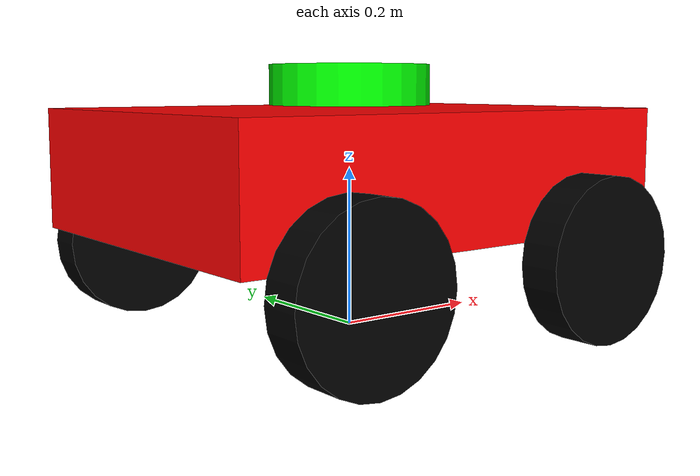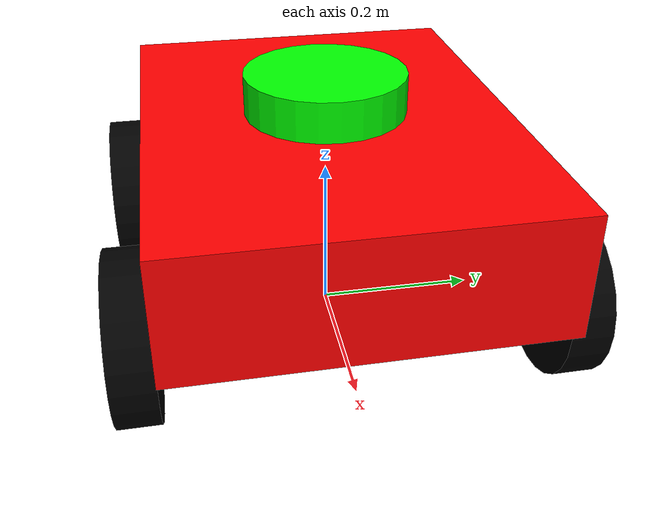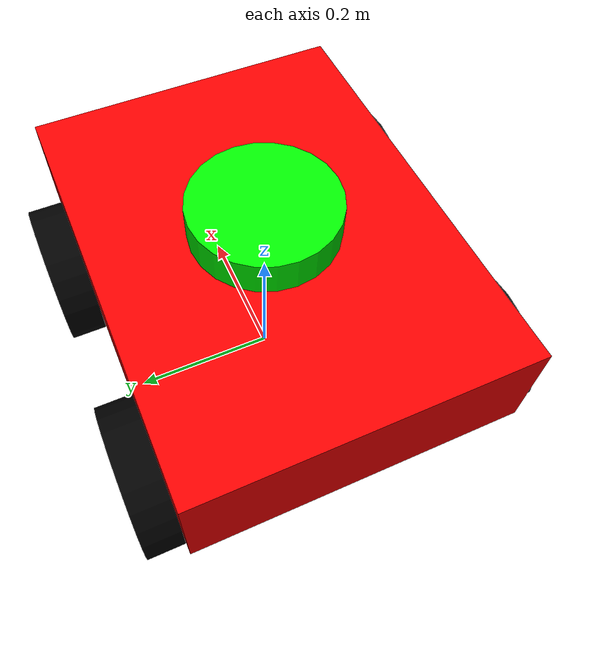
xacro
<?xml version="1.0"?>
<robot name="myrobot" xmlns:xacro="http://www.ros.org/wiki/xacro" >

    <xacro:include filename="$(find urdf_testing)/urdf/rob.xacro"/>
    <gazebo>
        <plugin name="skid_steer_frive_controller" filename="libgazebo_ros_skid_steer_drive.so">
            <updateRate>100.0</updateRate>
            <leftFrontJoint>joint_front_left_wheel</leftFrontJoint>
            <rightFrontJoint>joint_front_right_wheel</rightFrontJoint>
            <leftRearJoint>joint_back_left_wheel</leftRearJoint>
            <rightRearJoint>joint_back_right_wheel</rightRearJoint>
            <wheelSeparation>0.5</wheelSeparation>
            <wheelDiameter>0.2</wheelDiameter>
            <robotBaseFrame>robot_footprint</robotBaseFrame>
            <torque>20</torque>

            <topicName>cmd_vel</topicName>
            <odometryTopic>odom</odometryTopic>
            <odometryFrame>odom</odometryFrame>

            <broadcastTF>true</broadcastTF>

            <commandTopic>cmd_vel</commandTopic>
            <covariance_x>0.0001</covariance_x>
            <covariance_y>0.0001</covariance_y>
            <covariance_yaw>0.01</covariance_yaw>
        </plugin>
    </gazebo>

    <!-- Lidar -->
    <gazebo reference="sensor">
        <sensor type="ray" name="head_hokuyo_sensor">
        <pose>0 0 0 0 0 0</pose>
        <visualize>true</visualize>
        <update_rate>40</update_rate>
        <ray>
            <scan>
            <horizontal>
                <samples>720</samples>
                <resolution>1</resolution>
                <min_angle>-3.14159264</min_angle>
                <max_angle>3.14159264</max_angle>
            </horizontal>
            </scan>
            <range>
            <min>0.4</min>
            <max>30.0</max>
            <resolution>0.01</resolution>
            </range>
            <noise>
            <type>gaussian</type>
            <mean>0.0</mean>
            <stddev>0.01</stddev>
            </noise>
        </ray>
        <plugin name="gazebo_ros_head_hokuyo_controller" filename="libgazebo_ros_laser.so">
            <topicName>/scan</topicName>
            <frameName>sensor</frameName>
            <robotNamespace>/myrobot</robotNamespace>
        </plugin>
        </sensor>
    </gazebo>
</robot>

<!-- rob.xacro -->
<!-- Xacro file description-->
<robot name="myrobot" xmlns:xacro="http://www.ros.org/wiki/xacro" >

    <!-- dummy link-->
    <link name="robot_footprint"/>

    <!-- chassis link-->
    <link name="chassis">
        <inertial>
            <origin xyz="0.0 0.0 0.0" />
            <mass value="20"/>
            <inertia ixx="0.1" ixy="0.0" ixz="0.0" iyy="0.1" iyz="0.0" izz="0.1"/>
        </inertial>
        <visual>
            <origin xyz="0.0 0.0 0.2" />
            <geometry>
                <box size="0.6 0.45 0.15"/>
            </geometry>
            <material name="Red">
                <color rgba="1.0 0.0 0.0 1.0"/>
            </material>
        </visual>
        <collision>
            <origin xyz="0.0 0.0 0.2" />
            <geometry>
                <box size="0.6 0.45 0.15"/>
            </geometry>
            <material name="Red">
                <color rgba="1.0 0.0 0.0 1.0"/>
            </material>
        </collision>

    </link>
    <joint name="joint_chassis" type="fixed">
        <parent link="robot_footprint"/>
        <child link="chassis"/>
    </joint>

    <!-- Front left wheel link-->
    <link name="front_left_wheel">
        <inertial>
            <origin xyz="0.0 0.0 0.0" rpy="0.0 0.0 0.0"/>
            <mass value="0.7"/>
            <inertia ixx="0.1" ixy="0.0" ixz="0.0" iyy="0.1" iyz="0.0" izz="0.1"/>
        </inertial>
        <visual name="front_left_wheel_visual">
            <origin xyz="0.0 0.0 0.0" rpy="0 1.5707 1.5707"/>
            <geometry>
                <cylinder radius="0.1" length="0.05"/>
             </geometry>
             <material name="Black">
                <color rgba="0.0 0.0 0.0 1.0"/>
            </material>
        </visual>
        <collision name="front_left_wheel_collision">
            <origin xyz="0.0 0.0 0.0" rpy="0 1.5707 1.5707"/>
            <geometry>
                <cylinder radius="0.1" length="0.05"/>
            </geometry>
            <material name="Black">
                <color rgba="0.0 0.0 0.0 1.0"/>
            </material>
        </collision>
    </link>
    <joint name="joint_front_left_wheel" type="continuous">
        <origin xyz="0.175 0.25 0.1" rpy="0.0 0.0 0.0"/>
        <parent link="chassis"/>
        <child link="front_left_wheel"/>
        <axis xyz="0 1 0" rpy="0 0 0"/>
        <limit effort="10000" velocity="1000" />
	    <dynamics damping="1.0" friction="1.0" />
    </joint>

    <!-- back left wheel link-->
    <link name="back_left_wheel">
        <inertial>
            <origin xyz="0.0 0.0 0.0" rpy="0.0 0.0 0.0"/>
            <mass value="0.7"/>
            <inertia ixx="0.1" ixy="0.0" ixz="0.0" iyy="0.1" iyz="0.0" izz="0.1"/>
        </inertial>
        <visual name="back_left_wheel_visual">
            <origin xyz="0.0 0.0 0.0" rpy="0 1.5707 1.5707"/>
            <geometry>
                <cylinder radius="0.1" length="0.05"/>
            </geometry>
            <material name="Black">
                <color rgba="0.0 0.0 0.0 1.0"/>
            </material>
        </visual>
        <collision name="back_left_wheel_collision">
            <origin xyz="0.0 0.0 0.0" rpy="0 1.5707 1.5707"/>
            <geometry>
                <cylinder radius="0.1" length="0.05"/>
            </geometry>
            <material name="Black">
                <color rgba="0.0 0.0 0.0 1.0"/>
            </material>
        </collision>
    </link>
    <joint name="joint_back_left_wheel" type="continuous">
        <origin xyz="-0.175 0.25 0.1" rpy="0.0 0.0 0.0"/>
        <parent link="chassis"/>
        <child link="back_left_wheel"/>
        <axis xyz="0 1 0" rpy="0 0 0"/>
        <limit effort="10000" velocity="1000" />
	    <dynamics damping="1.0" friction="1.0" />
    </joint>

    <!-- front right wheel link-->
    <link name="front_right_wheel">
        <inertial>
            <origin xyz="0.0 0.0 0.0" rpy="0.0 0.0 0.0"/>
            <mass value="0.7"/>
            <inertia ixx="0.1" ixy="0.0" ixz="0.0" iyy="0.1" iyz="0.0" izz="0.1"/>
        </inertial>
        <visual name="front_right_wheel_visual">
            <origin xyz="0.0 0.0 0.0" rpy="0 1.5707 1.5707"/>
            <geometry>
                <cylinder radius="0.1" length="0.05"/>
            </geometry>
            <material name="Black">
                <color rgba="0.0 0.0 0.0 1.0"/>
            </material>
        </visual>
        <collision name="front_right_wheel_collision">
            <origin xyz="0.0 0.0 0.0" rpy="0 1.5707 1.5707"/>
            <geometry>
                <cylinder radius="0.1" length="0.05"/>
            </geometry>
            <material name="Black">
                <color rgba="0.0 0.0 0.0 1.0"/>
            </material>
        </collision>
    </link>
    <joint name="joint_front_right_wheel" type="continuous">
        <origin xyz="0.175 -0.25 0.1" rpy="0.0 0.0 0.0"/>
        <parent link="chassis"/>
        <child link="front_right_wheel"/>
        <axis xyz="0 1 0" rpy="0 0 0"/>
        <limit effort="10000" velocity="1000" />
	    <dynamics damping="1.0" friction="1.0" />
    </joint>
    <!-- back right wheel link-->
    <link name="back_right_wheel">
        <inertial>
            <origin xyz="0.0 0.0 0.0" rpy="0.0 0.0 0.0"/>
            <mass value="0.7"/>
            <inertia ixx="0.1" ixy="0.0" ixz="0.0" iyy="0.1" iyz="0.0" izz="0.1"/>
        </inertial>
        <visual name="back_right_wheel_visual">
            <origin xyz="0.0 0.0 0.0" rpy="0 1.5707 1.5707"/>
            <geometry>
                <cylinder radius="0.1" length="0.05"/>
            </geometry>
            <material name="Black">
                <color rgba="0.0 0.0 0.0 1.0"/>
            </material>
        </visual>
        <collision name="back_right_wheel_collision">
            <origin xyz="0.0 0.0 0.0" rpy="0 1.5707 1.5707"/>
            <geometry>
                <cylinder radius="0.1" length="0.05"/>
            </geometry>
            <material name="Black">
                <color rgba="0.0 0.0 0.0 1.0"/>
            </material>
        </collision>
    </link>
    <joint name="joint_back_right_wheel" type="continuous">
        <origin xyz="-0.175 -0.25 0.1" rpy="0.0 0.0 0.0"/>
        <parent link="chassis"/>
        <child link="back_right_wheel"/>
        <axis xyz="0 1 0" rpy="0 0 0"/>
        <limit effort="10000" velocity="1000" />
	    <dynamics damping="1.0" friction="1.0" />
    </joint>

    <!-- lidar link-->

    <link name="sensor">
        <inertial>
            <origin xyz="0 0 0" rpy="0 0 0"/>
            <mass value="0.9"/>
            <inertia ixx="1.0" ixy="0.0" ixz="0.0" iyy="1.0" iyz="0.0" izz="1.0"/>
        </inertial>
        <visual>
            <origin xyz="0 0 0" rpy="0 0 0"/>
            <geometry>
                <cylinder radius="0.1" length="0.05"/>
            </geometry>
            <material name="Green">
                <color rgba="0.0 1.0 0.0 1.0"/>
            </material>
        </visual>
        <collision>
            <origin xyz="0 0 0" rpy="0 0 0"/>
            <geometry>
                <cylinder radius="0.1" length="0.05"/>
            </geometry>
            <material name="Green">
                <color rgba="0.0 1.0 0.0 1.0"/>
            </material>
        </collision>
    </link>
    <joint name="sensor_joint" type="fixed">
        <origin xyz="0.0 0.0 0.304" rpy="0 0 0"/>
        <parent link="chassis"/>
        <child link="sensor"/>
        <axis xyz="0 0 0"/>
    </joint>

    <!-- Color of bot -->

    <gazebo reference="chassis">
		<material>Gazebo/Red</material>
	</gazebo>

    <gazebo reference="sensor">
        <material>Gazebo/Green</material>
    </gazebo>

    <gazebo reference="front_left_wheel">
		<material>Gazebo/Black</material>
		<kp>1000000.0</kp> <!-- kp and kd for rubber -->
		<kd>100.0</kd>
		<mu1>1.0</mu1>
		<mu2>1.0</mu2>
		<maxVel>1.0</maxVel>
		<minDepth>0.00</minDepth>
	</gazebo>

    <gazebo reference="back_left_wheel">
		<material>Gazebo/Black</material>
		<kp>1000000.0</kp> <!-- kp and kd for rubber -->
		<kd>100.0</kd>
		<mu1>1.0</mu1>
		<mu2>1.0</mu2>
		<maxVel>1.0</maxVel>
		<minDepth>0.00</minDepth>
	</gazebo>

    <gazebo reference="front_right_wheel">
		<material>Gazebo/Black</material>
		<kp>1000000.0</kp> <!-- kp and kd for rubber -->
		<kd>100.0</kd>
		<mu1>1.0</mu1>
		<mu2>1.0</mu2>
		<maxVel>1.0</maxVel>
		<minDepth>0.00</minDepth>
	</gazebo>

    <gazebo reference="back_right_wheel">
		<material>Gazebo/Black</material>
		<kp>1000000.0</kp> <!-- kp and kd for rubber -->
		<kd>100.0</kd>
		<mu1>1.0</mu1>
		<mu2>1.0</mu2>
		<maxVel>1.0</maxVel>
		<minDepth>0.00</minDepth>
	</gazebo>
</robot>
